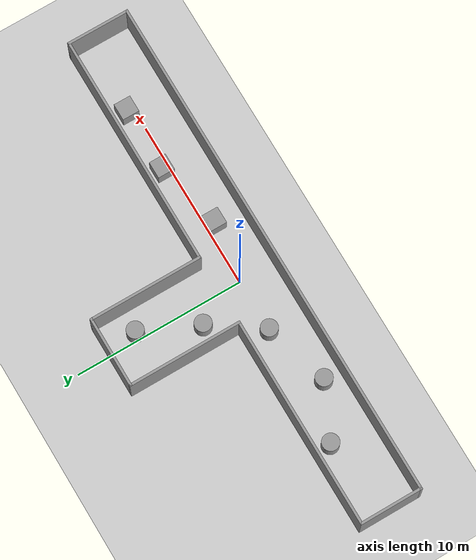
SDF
<sdf version="1.7">
 <world name="default">
  <light name="sun" type="directional">
   <pose>0 0 10 0 -0 0</pose>
   <diffuse>0.8 0.8 0.8 1</diffuse>
   <specular>0.2 0.2 0.2 1</specular>
   <attenuation>
    <range>1000</range>
    <constant>0.9</constant>
    <linear>0.01</linear>
    <quadratic>0.001</quadratic>
   </attenuation>
   <direction>-0.5 0.1 -0.9</direction>
   <spot><inner_angle>0</inner_angle><outer_angle>0</outer_angle><falloff>0</falloff></spot>
  </light>
  <model name="ground_plane">
   <static>1</static>
   <link name="link">
    <collision name="collision">
     <geometry><plane><normal>0 0 1</normal><size>100 100</size></plane></geometry>
     <surface>
      <contact><collide_bitmask>65535</collide_bitmask></contact>
      <friction><ode><mu>100</mu><mu2>50</mu2></ode></friction>
     </surface>
    </collision>
    <visual name="visual">
     <cast_shadows>0</cast_shadows>
     <geometry><plane><normal>0 0 1</normal><size>100 100</size></plane></geometry>
     <material>
      <script><uri>file://media/materials/scripts/gazebo.material</uri><name>Gazebo/Grey</name></script>
     </material>
    </visual>
   </link>
  </model>
  <gravity>0 0 -9.8</gravity>
  <magnetic_field>6e-06 2.3e-05 -4.2e-05</magnetic_field>
  <atmosphere type="adiabatic"/>
  <physics type="ode">
   <max_step_size>0.001</max_step_size>
   <real_time_factor>1</real_time_factor>
   <real_time_update_rate>1000</real_time_update_rate>
  </physics>
  <scene><ambient>0.4 0.4 0.4 1</ambient><background>0.7 0.7 0.7 1</background><shadows>1</shadows></scene>
  <spherical_coordinates>
   <surface_model>EARTH_WGS84</surface_model>
   <latitude_deg>0</latitude_deg>
   <longitude_deg>0</longitude_deg>
   <elevation>0</elevation>
   <heading_deg>0</heading_deg>
  </spherical_coordinates>
  <model name="floor">
   <pose>0.395 2.96 0 0 -0 0</pose>
   <link name="Wall_0">
    <collision name="Wall_0_Collision">
     <geometry><box><size>6.75 0.15 2.5</size></box></geometry>
     <pose>0 0 1.25 0 -0 0</pose>
    </collision>
    <visual name="Wall_0_Visual">
     <pose>0 0 1.25 0 -0 0</pose>
     <geometry><box><size>6.75 0.15 2.5</size></box></geometry>
     <material>
      <script><uri>file://media/materials/scripts/gazebo.material</uri><name>Gazebo/Grey</name></script>
      <ambient>1 1 1 1</ambient>
     </material>
     <meta><layer>0</layer></meta>
    </visual>
    <pose>-2.775 1.8 0 0 -0 1.5708</pose>
   </link>
   <link name="Wall_1">
    <collision name="Wall_1_Collision">
     <geometry><box><size>4.25 0.15 2.5</size></box></geometry>
     <pose>0 0 1.25 0 -0 0</pose>
    </collision>
    <visual name="Wall_1_Visual">
     <pose>0 0 1.25 0 -0 0</pose>
     <geometry><box><size>4.25 0.15 2.5</size></box></geometry>
     <material>
      <script><uri>file://media/materials/scripts/gazebo.material</uri><name>Gazebo/Grey</name></script>
      <ambient>1 1 1 1</ambient>
     </material>
     <meta><layer>0</layer></meta>
    </visual>
    <pose>-0.725 5.1 0 0 -0 0</pose>
   </link>
   <link name="Wall_2">
    <collision name="Wall_2_Collision">
     <geometry><box><size>6.75 0.15 2.5</size></box></geometry>
     <pose>0 0 1.25 0 -0 0</pose>
    </collision>
    <visual name="Wall_2_Visual">
     <pose>0 0 1.25 0 -0 0</pose>
     <geometry><box><size>6.75 0.15 2.5</size></box></geometry>
     <material>
      <script><uri>file://media/materials/scripts/gazebo.material</uri><name>Gazebo/Grey</name></script>
      <ambient>1 1 1 1</ambient>
     </material>
     <meta><layer>0</layer></meta>
    </visual>
    <pose>1.325 1.8 0 0 -0 -1.5708</pose>
   </link>
   <link name="Wall_3">
    <collision name="Wall_3_Collision">
     <geometry><box><size>14 0.15 2.5</size></box></geometry>
     <pose>0 0 1.25 0 -0 0</pose>
    </collision>
    <visual name="Wall_3_Visual">
     <pose>0 0 1.25 0 -0 0</pose>
     <geometry><box><size>14 0.15 2.5</size></box></geometry>
     <material>
      <script><uri>file://media/materials/scripts/gazebo.material</uri><name>Gazebo/Grey</name></script>
      <ambient>1 1 1 1</ambient>
     </material>
     <meta><layer>0</layer></meta>
    </visual>
    <pose>8.25 -1.5 0 0 -0 0</pose>
   </link>
   <link name="Wall_4">
    <collision name="Wall_4_Collision">
     <geometry><box><size>3.75 0.15 2.5</size></box></geometry>
     <pose>0 0 1.25 0 -0 0</pose>
    </collision>
    <visual name="Wall_4_Visual">
     <pose>0 0 1.25 0 -0 0</pose>
     <geometry><box><size>3.75 0.15 2.5</size></box></geometry>
     <material>
      <script><uri>file://media/materials/scripts/gazebo.material</uri><name>Gazebo/Grey</name></script>
      <ambient>1 1 1 1</ambient>
     </material>
     <meta><layer>0</layer></meta>
    </visual>
    <pose>15.175 -3.3 0 0 -0 -1.5708</pose>
   </link>
   <link name="Wall_5">
    <collision name="Wall_5_Collision">
     <geometry><box><size>30.5 0.15 2.5</size></box></geometry>
     <pose>0 0 1.25 0 -0 0</pose>
    </collision>
    <visual name="Wall_5_Visual">
     <pose>0 0 1.25 0 -0 0</pose>
     <geometry><box><size>30.5 0.15 2.5</size></box></geometry>
     <material>
      <script><uri>file://media/materials/scripts/gazebo.material</uri><name>Gazebo/Grey</name></script>
      <ambient>1 1 1 1</ambient>
     </material>
     <meta><layer>0</layer></meta>
    </visual>
    <pose>-0 -5.1 0 0 -0 3.14159</pose>
   </link>
   <link name="Wall_6">
    <collision name="Wall_6_Collision">
     <geometry><box><size>3.75 0.15 2.5</size></box></geometry>
     <pose>0 0 1.25 0 -0 0</pose>
    </collision>
    <visual name="Wall_6_Visual">
     <pose>0 0 1.25 0 -0 0</pose>
     <geometry><box><size>3.75 0.15 2.5</size></box></geometry>
     <material>
      <script><uri>file://media/materials/scripts/gazebo.material</uri><name>Gazebo/Grey</name></script>
      <ambient>1 1 1 1</ambient>
     </material>
     <meta><layer>0</layer></meta>
    </visual>
    <pose>-15.175 -3.3 0 0 -0 1.5708</pose>
   </link>
   <link name="Wall_7">
    <collision name="Wall_7_Collision">
     <geometry><box><size>12.55 0.15 2.5</size></box></geometry>
     <pose>0 0 1.25 0 -0 0</pose>
    </collision>
    <visual name="Wall_7_Visual">
     <pose>0 0 1.25 0 -0 0</pose>
     <geometry><box><size>12.55 0.15 2.5</size></box></geometry>
     <material>
      <script><uri>file://media/materials/scripts/gazebo.material</uri><name>Gazebo/Grey</name></script>
      <ambient>1 1 1 1</ambient>
     </material>
     <meta><layer>0</layer></meta>
    </visual>
    <pose>-8.975 -1.5 0 0 -0 0</pose>
   </link>
   <static>1</static>
  </model>
  <model name="unit_cylinder">
   <pose>-3.14674 0.044985 0.499998 3e-06 -4e-06 0</pose>
   <link name="link">
    <inertial>
     <mass>1</mass>
     <inertia><ixx>0.145833</ixx><ixy>0</ixy><ixz>0</ixz><iyy>0.145833</iyy><iyz>0</iyz><izz>0.125</izz></inertia>
    </inertial>
    <collision name="collision">
     <geometry><cylinder><radius>0.5</radius><length>1</length></cylinder></geometry>
    </collision>
    <visual name="visual">
     <geometry><cylinder><radius>0.5</radius><length>1</length></cylinder></geometry>
     <material>
      <script><name>Gazebo/Grey</name><uri>file://media/materials/scripts/gazebo.material</uri></script>
     </material>
    </visual>
   </link>
  </model>
  <model name="unit_cylinder_0">
   <pose>-10.0929 0.433685 0.499992 -3e-06 4e-06 0</pose>
   <link name="link">
    <inertial>
     <mass>1</mass>
     <inertia><ixx>0.145833</ixx><ixy>0</ixy><ixz>0</ixz><iyy>0.145833</iyy><iyz>0</iyz><izz>0.125</izz></inertia>
    </inertial>
    <collision name="collision">
     <geometry><cylinder><radius>0.5</radius><length>1</length></cylinder></geometry>
    </collision>
    <visual name="visual">
     <geometry><cylinder><radius>0.5</radius><length>1</length></cylinder></geometry>
     <material>
      <script><name>Gazebo/Grey</name><uri>file://media/materials/scripts/gazebo.material</uri></script>
     </material>
    </visual>
   </link>
  </model>
  <model name="unit_cylinder_1">
   <pose>-6.94613 -1.05895 0.499998 3e-06 -4e-06 0</pose>
   <link name="link">
    <inertial>
     <mass>1</mass>
     <inertia><ixx>0.145833</ixx><ixy>0</ixy><ixz>0</ixz><iyy>0.145833</iyy><iyz>0</iyz><izz>0.125</izz></inertia>
    </inertial>
    <collision name="collision">
     <geometry><cylinder><radius>0.5</radius><length>1</length></cylinder></geometry>
    </collision>
    <visual name="visual">
     <geometry><cylinder><radius>0.5</radius><length>1</length></cylinder></geometry>
     <material>
      <script><name>Gazebo/Grey</name><uri>file://media/materials/scripts/gazebo.material</uri></script>
     </material>
    </visual>
   </link>
  </model>
  <model name="unit_cylinder_2">
   <pose>-1.13999 2.94181 0.499992 -3e-06 -4e-06 -0</pose>
   <link name="link">
    <inertial>
     <mass>1</mass>
     <inertia><ixx>0.145833</ixx><ixy>0</ixy><ixz>0</ixz><iyy>0.145833</iyy><iyz>0</iyz><izz>0.125</izz></inertia>
    </inertial>
    <collision name="collision">
     <geometry><cylinder><radius>0.5</radius><length>1</length></cylinder></geometry>
    </collision>
    <visual name="visual">
     <geometry><cylinder><radius>0.5</radius><length>1</length></cylinder></geometry>
     <material>
      <script><name>Gazebo/Grey</name><uri>file://media/materials/scripts/gazebo.material</uri></script>
     </material>
    </visual>
   </link>
  </model>
  <model name="unit_cylinder_3">
   <pose>0.379714 6.23478 0.499993 -3e-06 -3e-06 0</pose>
   <link name="link">
    <inertial>
     <mass>1</mass>
     <inertia><ixx>0.145833</ixx><ixy>0</ixy><ixz>0</ixz><iyy>0.145833</iyy><iyz>0</iyz><izz>0.125</izz></inertia>
    </inertial>
    <collision name="collision">
     <geometry><cylinder><radius>0.5</radius><length>1</length></cylinder></geometry>
    </collision>
    <visual name="visual">
     <geometry><cylinder><radius>0.5</radius><length>1</length></cylinder></geometry>
     <material>
      <script><name>Gazebo/Grey</name><uri>file://media/materials/scripts/gazebo.material</uri></script>
     </material>
    </visual>
   </link>
  </model>
  <model name="unit_box">
   <pose>3.48506 -0.463428 0.499995 0 1e-05 0</pose>
   <link name="link">
    <inertial>
     <mass>1</mass>
     <inertia>
      <ixx>0.166667</ixx>
      <ixy>0</ixy>
      <ixz>0</ixz>
      <iyy>0.166667</iyy>
      <iyz>0</iyz>
      <izz>0.166667</izz>
     </inertia>
    </inertial>
    <collision name="collision"><geometry><box><size>1 1 1</size></box></geometry></collision>
    <visual name="visual">
     <geometry><box><size>1 1 1</size></box></geometry>
     <material>
      <script><name>Gazebo/Grey</name><uri>file://media/materials/scripts/gazebo.material</uri></script>
     </material>
    </visual>
   </link>
  </model>
  <model name="unit_box_0">
   <pose>7.4804 0.4384 0.499995 -1e-05 -0 0</pose>
   <link name="link">
    <inertial>
     <mass>1</mass>
     <inertia>
      <ixx>0.166667</ixx>
      <ixy>0</ixy>
      <ixz>0</ixz>
      <iyy>0.166667</iyy>
      <iyz>0</iyz>
      <izz>0.166667</izz>
     </inertia>
    </inertial>
    <collision name="collision"><geometry><box><size>1 1 1</size></box></geometry></collision>
    <visual name="visual">
     <geometry><box><size>1 1 1</size></box></geometry>
     <material>
      <script><name>Gazebo/Grey</name><uri>file://media/materials/scripts/gazebo.material</uri></script>
     </material>
    </visual>
   </link>
  </model>
  <model name="unit_box_1">
   <pose>11.2764 0.437873 0.5 0 -0 0</pose>
   <link name="link">
    <inertial>
     <mass>1</mass>
     <inertia>
      <ixx>0.166667</ixx>
      <ixy>0</ixy>
      <ixz>0</ixz>
      <iyy>0.166667</iyy>
      <iyz>0</iyz>
      <izz>0.166667</izz>
     </inertia>
    </inertial>
    <collision name="collision"><geometry><box><size>1 1 1</size></box></geometry></collision>
    <visual name="visual">
     <geometry><box><size>1 1 1</size></box></geometry>
     <material>
      <script><name>Gazebo/Grey</name><uri>file://media/materials/scripts/gazebo.material</uri></script>
     </material>
    </visual>
   </link>
  </model>
 </world>
</sdf>
